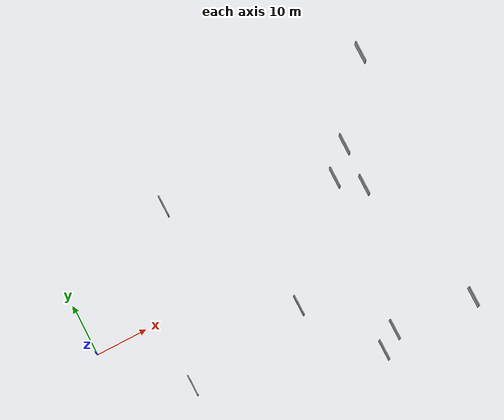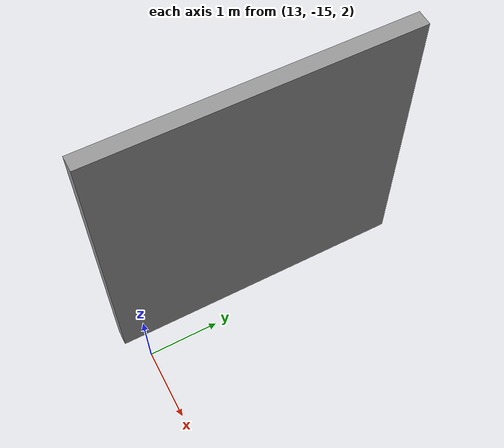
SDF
<sdf version="1.6">
 <world name="default">
  <scene>
   <sky><clouds><speed>12</speed></clouds></sky>
   <ambient>0.4 0.4 0.4 1</ambient>
   <background>0.7 0.7 0.7 1</background>
   <shadows>1</shadows>
  </scene>
  <gravity>0 0 -9.8066</gravity>
  <magnetic_field>6e-06 2.3e-05 -4.2e-05</magnetic_field>
  <physics default="0" name="default_physics" type="ode">
   <ode>
    <solver>
     <type>quick</type>
     <iters>10</iters>
     <sor>1.0</sor>
     <use_dynamic_moi_rescaling>0</use_dynamic_moi_rescaling>
    </solver>
    <constraints>
     <cfm>0</cfm>
     <erp>0.2</erp>
     <contact_max_correcting_vel>100</contact_max_correcting_vel>
     <contact_surface_layer>0.001</contact_surface_layer>
    </constraints>
   </ode>
   <max_step_size>0.004</max_step_size>
   <real_time_factor>1</real_time_factor>
   <real_time_update_rate>250</real_time_update_rate>
  </physics>
  <light name="sun" type="directional">
   <pose>0 0 10 0 0 0</pose>
   <diffuse>0.8 0.8 0.8 1</diffuse>
   <specular>0.2 0.2 0.2 1</specular>
   <attenuation>
    <range>1000</range>
    <constant>0.9</constant>
    <linear>0.01</linear>
    <quadratic>0.001</quadratic>
   </attenuation>
   <direction>-0.5 0.1 -0.9</direction>
  </light>
  <model name="grey_wall_1">
   <static>1</static>
   <pose>23.0916 18.1745 2.5 0.000000 0.000000 1.570796</pose>
   <link name="link">
    <pose>0 0 2.00 0 0 0</pose>
    <collision name="collision"><geometry><box><size>4.00 0.2 4.00</size></box></geometry></collision>
    <visual name="visual">
     <cast_shadows>0</cast_shadows>
     <geometry><box><size>4.00 0.2 4.00</size></box></geometry>
     <material>
      <script>
       <uri>model://grey_wall/materials/scripts</uri>
       <uri>model://grey_wall/materials/textures</uri>
       <name>vrc/grey_wall</name>
      </script>
     </material>
    </visual>
   </link>
  </model>
  <model name="grey_wall_2">
   <static>1</static>
   <pose>36.5583 -9.2720 2.5 0.000000 0.000000 1.570796</pose>
   <link name="link">
    <pose>0 0 2.00 0 0 0</pose>
    <collision name="collision"><geometry><box><size>4.00 0.2 4.00</size></box></geometry></collision>
    <visual name="visual">
     <cast_shadows>0</cast_shadows>
     <geometry><box><size>4.00 0.2 4.00</size></box></geometry>
     <material>
      <script>
       <uri>model://grey_wall/materials/scripts</uri>
       <uri>model://grey_wall/materials/textures</uri>
       <name>vrc/grey_wall</name>
      </script>
     </material>
    </visual>
   </link>
  </model>
  <model name="grey_wall_3">
   <static>1</static>
   <pose>12.8195 -13.2846 2.5 0.000000 0.000000 1.570796</pose>
   <link name="link">
    <pose>0 0 2.00 0 0 0</pose>
    <collision name="collision"><geometry><box><size>4.00 0.2 4.00</size></box></geometry></collision>
    <visual name="visual">
     <cast_shadows>0</cast_shadows>
     <geometry><box><size>4.00 0.2 4.00</size></box></geometry>
     <material>
      <script>
       <uri>model://grey_wall/materials/scripts</uri>
       <uri>model://grey_wall/materials/textures</uri>
       <name>vrc/grey_wall</name>
      </script>
     </material>
    </visual>
   </link>
  </model>
  <model name="grey_wall_4">
   <static>1</static>
   <pose>46.5340 -23.5868 2.5 0.000000 0.000000 1.570796</pose>
   <link name="link">
    <pose>0 0 2.00 0 0 0</pose>
    <collision name="collision"><geometry><box><size>4.00 0.2 4.00</size></box></geometry></collision>
    <visual name="visual">
     <cast_shadows>0</cast_shadows>
     <geometry><box><size>4.00 0.2 4.00</size></box></geometry>
     <material>
      <script>
       <uri>model://grey_wall/materials/scripts</uri>
       <uri>model://grey_wall/materials/textures</uri>
       <name>vrc/grey_wall</name>
      </script>
     </material>
    </visual>
   </link>
  </model>
  <model name="grey_wall_5">
   <static>1</static>
   <pose>57.3381 4.7853 2.5 0.000000 0.000000 1.570796</pose>
   <link name="link">
    <pose>0 0 2.00 0 0 0</pose>
    <collision name="collision"><geometry><box><size>4.00 0.2 4.00</size></box></geometry></collision>
    <visual name="visual">
     <cast_shadows>0</cast_shadows>
     <geometry><box><size>4.00 0.2 4.00</size></box></geometry>
     <material>
      <script>
       <uri>model://grey_wall/materials/scripts</uri>
       <uri>model://grey_wall/materials/textures</uri>
       <name>vrc/grey_wall</name>
      </script>
     </material>
    </visual>
   </link>
  </model>
  <model name="grey_wall_6">
   <static>1</static>
   <pose>53.1953 8.4329 2.5 0.000000 0.000000 1.570796</pose>
   <link name="link">
    <pose>0 0 2.00 0 0 0</pose>
    <collision name="collision"><geometry><box><size>4.00 0.2 4.00</size></box></geometry></collision>
    <visual name="visual">
     <cast_shadows>0</cast_shadows>
     <geometry><box><size>4.00 0.2 4.00</size></box></geometry>
     <material>
      <script>
       <uri>model://grey_wall/materials/scripts</uri>
       <uri>model://grey_wall/materials/textures</uri>
       <name>vrc/grey_wall</name>
      </script>
     </material>
    </visual>
   </link>
  </model>
  <model name="grey_wall_7">
   <static>1</static>
   <pose>68.0948 26.7544 2.5 0.000000 0.000000 1.570796</pose>
   <link name="link">
    <pose>0 0 2.00 0 0 0</pose>
    <collision name="collision"><geometry><box><size>4.00 0.2 4.00</size></box></geometry></collision>
    <visual name="visual">
     <cast_shadows>0</cast_shadows>
     <geometry><box><size>4.00 0.2 4.00</size></box></geometry>
     <material>
      <script>
       <uri>model://grey_wall/materials/scripts</uri>
       <uri>model://grey_wall/materials/textures</uri>
       <name>vrc/grey_wall</name>
      </script>
     </material>
    </visual>
   </link>
  </model>
  <model name="grey_wall_8">
   <static>1</static>
   <pose>49.9795 -21.1900 2.5 0.000000 0.000000 1.570796</pose>
   <link name="link">
    <pose>0 0 2.00 0 0 0</pose>
    <collision name="collision"><geometry><box><size>4.00 0.2 4.00</size></box></geometry></collision>
    <visual name="visual">
     <cast_shadows>0</cast_shadows>
     <geometry><box><size>4.00 0.2 4.00</size></box></geometry>
     <material>
      <script>
       <uri>model://grey_wall/materials/scripts</uri>
       <uri>model://grey_wall/materials/textures</uri>
       <name>vrc/grey_wall</name>
      </script>
     </material>
    </visual>
   </link>
  </model>
  <model name="grey_wall_9">
   <static>1</static>
   <pose>57.6206 13.0533 2.5 0.000000 0.000000 1.570796</pose>
   <link name="link">
    <pose>0 0 2.00 0 0 0</pose>
    <collision name="collision"><geometry><box><size>4.00 0.2 4.00</size></box></geometry></collision>
    <visual name="visual">
     <cast_shadows>0</cast_shadows>
     <geometry><box><size>4.00 0.2 4.00</size></box></geometry>
     <material>
      <script>
       <uri>model://grey_wall/materials/scripts</uri>
       <uri>model://grey_wall/materials/textures</uri>
       <name>vrc/grey_wall</name>
      </script>
     </material>
    </visual>
   </link>
  </model>
  <model name="grey_wall_10">
   <static>1</static>
   <pose>65.4351 -22.5373 2.5 0.000000 0.000000 1.570796</pose>
   <link name="link">
    <pose>0 0 2.00 0 0 0</pose>
    <collision name="collision"><geometry><box><size>4.00 0.2 4.00</size></box></geometry></collision>
    <visual name="visual">
     <cast_shadows>0</cast_shadows>
     <geometry><box><size>4.00 0.2 4.00</size></box></geometry>
     <material>
      <script>
       <uri>model://grey_wall/materials/scripts</uri>
       <uri>model://grey_wall/materials/textures</uri>
       <name>vrc/grey_wall</name>
      </script>
     </material>
    </visual>
   </link>
  </model>
 </world>
</sdf>
